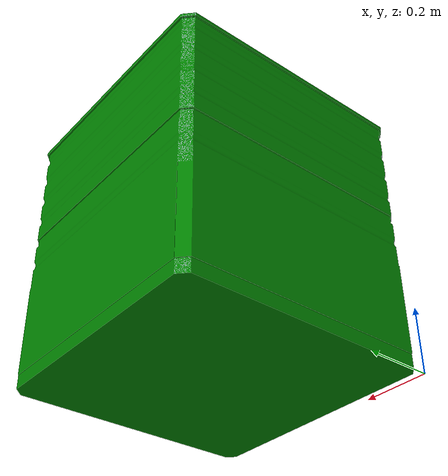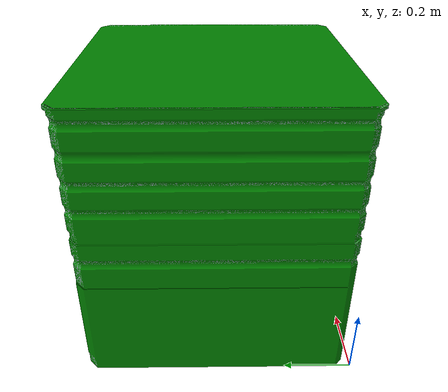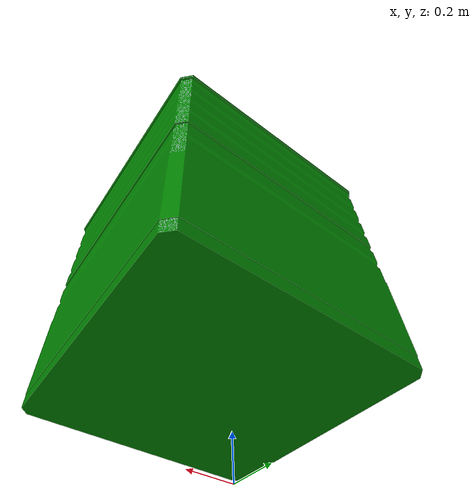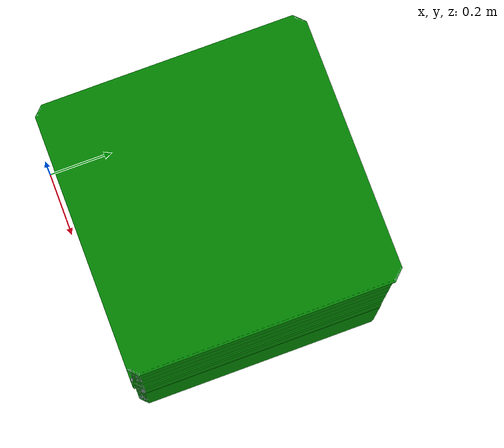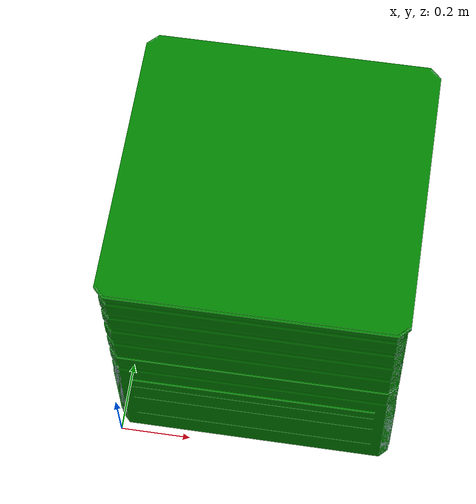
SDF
<?xml version="1.0" ?>
<sdf version="1.5">
  <model name="compost_bin">
    <static>true</static>
    <link name="compost_link">
        <collision name="compost_collision">
         <geometry>
            <mesh>
              <uri>model://compost_bin/meshes/model.dae</uri>
            </mesh>
            <origin xyz="0 0 0" rpy="0 0 0"/>
        </geometry>
      </collision>

      <visual name="compost_mesh">
        <cast_shadows>true</cast_shadows>
        <geometry>
            <mesh>
                <uri>model://compost_bin/meshes/model.dae</uri>
            </mesh>
        </geometry>
      </visual>
    </link>
  </model>
</sdf>
